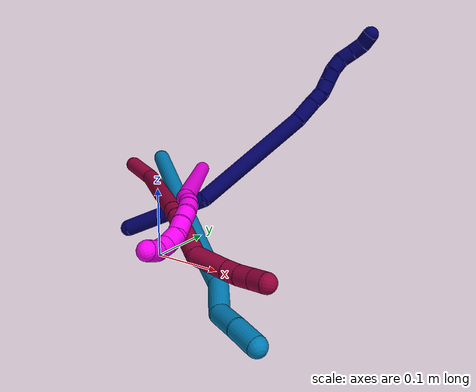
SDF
<sdf version="1.7">
 <world name="default">
  <model name="7">
   <static>0</static>
   <link name="7">
    <collision name="collision-cylinder-e_1_1_4">
     <pose>0.030117 0.025049 0.053015 -0.441399 0.474504 -0.108394</pose>
     <geometry><cylinder><radius>0.0125</radius><length>0.131835</length></cylinder></geometry>
     <surface>
      <friction><ode><mu>1.16</mu><mu2>1.16</mu2><slip1>0</slip1><slip2>0</slip2></ode></friction>
      <contact><ode><kp>1e+06</kp><kd>1</kd><max_vel>0</max_vel><min_depth>0.001</min_depth></ode></contact>
     </surface>
    </collision>
    <visual name="visual-cylinder-e_1_1_4">
     <pose>0.030117 0.025049 0.053015 -0.441399 0.474504 -0.108394</pose>
     <geometry><cylinder><radius>0.0125</radius><length>0.131835</length></cylinder></geometry>
     <material><ambient>0.003922 0 0.403922 1</ambient></material>
    </visual>
    <collision name="collision-cylinder-e_2_4_5">
     <pose>0.068075 0.066408 0.199554 -0.172661 0.082392 -0.007135</pose>
     <geometry><cylinder><radius>0.0125</radius><length>0.190518</length></cylinder></geometry>
     <surface>
      <friction><ode><mu>1.16</mu><mu2>1.16</mu2><slip1>0</slip1><slip2>0</slip2></ode></friction>
      <contact><ode><kp>1e+06</kp><kd>1</kd><max_vel>0</max_vel><min_depth>0.001</min_depth></ode></contact>
     </surface>
    </collision>
    <visual name="visual-cylinder-e_2_4_5">
     <pose>0.068075 0.066408 0.199554 -0.172661 0.082392 -0.007135</pose>
     <geometry><cylinder><radius>0.0125</radius><length>0.190518</length></cylinder></geometry>
     <material><ambient>0.003922 0 0.403922 1</ambient></material>
    </visual>
    <collision name="collision-cylinder-e_3_5_6">
     <pose>0.076234 0.083235 0.311347 -0.02823 0.017481 -0.000247</pose>
     <geometry><cylinder><radius>0.0125</radius><length>0.036557</length></cylinder></geometry>
     <surface>
      <friction><ode><mu>1.16</mu><mu2>1.16</mu2><slip1>0</slip1><slip2>0</slip2></ode></friction>
      <contact><ode><kp>1e+06</kp><kd>1</kd><max_vel>0</max_vel><min_depth>0.001</min_depth></ode></contact>
     </surface>
    </collision>
    <visual name="visual-cylinder-e_3_5_6">
     <pose>0.076234 0.083235 0.311347 -0.02823 0.017481 -0.000247</pose>
     <geometry><cylinder><radius>0.0125</radius><length>0.036557</length></cylinder></geometry>
     <material><ambient>0.003922 0 0.403922 1</ambient></material>
    </visual>
    <collision name="collision-cylinder-e_4_6_7">
     <pose>0.077631 0.084389 0.33956 -0.064083 0.107746 -0.003457</pose>
     <geometry><cylinder><radius>0.0125</radius><length>0.020048</length></cylinder></geometry>
     <surface>
      <friction><ode><mu>1.16</mu><mu2>1.16</mu2><slip1>0</slip1><slip2>0</slip2></ode></friction>
      <contact><ode><kp>1e+06</kp><kd>1</kd><max_vel>0</max_vel><min_depth>0.001</min_depth></ode></contact>
     </surface>
    </collision>
    <visual name="visual-cylinder-e_4_6_7">
     <pose>0.077631 0.084389 0.33956 -0.064083 0.107746 -0.003457</pose>
     <geometry><cylinder><radius>0.0125</radius><length>0.020048</length></cylinder></geometry>
     <material><ambient>0.003922 0 0.403922 1</ambient></material>
    </visual>
    <collision name="collision-cylinder-e_5_7_8">
     <pose>0.078703 0.082758 0.359367 0.226108 -0.000594 -6.7e-05</pose>
     <geometry><cylinder><radius>0.0125</radius><length>0.020238</length></cylinder></geometry>
     <surface>
      <friction><ode><mu>1.16</mu><mu2>1.16</mu2><slip1>0</slip1><slip2>0</slip2></ode></friction>
      <contact><ode><kp>1e+06</kp><kd>1</kd><max_vel>0</max_vel><min_depth>0.001</min_depth></ode></contact>
     </surface>
    </collision>
    <visual name="visual-cylinder-e_5_7_8">
     <pose>0.078703 0.082758 0.359367 0.226108 -0.000594 -6.7e-05</pose>
     <geometry><cylinder><radius>0.0125</radius><length>0.020238</length></cylinder></geometry>
     <material><ambient>0.003922 0 0.403922 1</ambient></material>
    </visual>
    <collision name="collision-cylinder-e_6_8_9">
     <pose>0.080294 0.0776 0.378692 0.296386 0.16003 0.02394</pose>
     <geometry><cylinder><radius>0.0125</radius><length>0.020045</length></cylinder></geometry>
     <surface>
      <friction><ode><mu>1.16</mu><mu2>1.16</mu2><slip1>0</slip1><slip2>0</slip2></ode></friction>
      <contact><ode><kp>1e+06</kp><kd>1</kd><max_vel>0</max_vel><min_depth>0.001</min_depth></ode></contact>
     </surface>
    </collision>
    <visual name="visual-cylinder-e_6_8_9">
     <pose>0.080294 0.0776 0.378692 0.296386 0.16003 0.02394</pose>
     <geometry><cylinder><radius>0.0125</radius><length>0.020045</length></cylinder></geometry>
     <material><ambient>0.003922 0 0.403922 1</ambient></material>
    </visual>
    <collision name="collision-cylinder-e_7_9_10">
     <pose>0.083522 0.07408 0.398245 0.062417 0.159923 0.005003</pose>
     <geometry><cylinder><radius>0.0125</radius><length>0.02048</length></cylinder></geometry>
     <surface>
      <friction><ode><mu>1.16</mu><mu2>1.16</mu2><slip1>0</slip1><slip2>0</slip2></ode></friction>
      <contact><ode><kp>1e+06</kp><kd>1</kd><max_vel>0</max_vel><min_depth>0.001</min_depth></ode></contact>
     </surface>
    </collision>
    <visual name="visual-cylinder-e_7_9_10">
     <pose>0.083522 0.07408 0.398245 0.062417 0.159923 0.005003</pose>
     <geometry><cylinder><radius>0.0125</radius><length>0.02048</length></cylinder></geometry>
     <material><ambient>0.003922 0 0.403922 1</ambient></material>
    </visual>
    <collision name="collision-cylinder-e_8_10_11">
     <pose>0.08872 0.075709 0.417487 -0.242056 0.361795 -0.044481</pose>
     <geometry><cylinder><radius>0.0125</radius><length>0.02016</length></cylinder></geometry>
     <surface>
      <friction><ode><mu>1.16</mu><mu2>1.16</mu2><slip1>0</slip1><slip2>0</slip2></ode></friction>
      <contact><ode><kp>1e+06</kp><kd>1</kd><max_vel>0</max_vel><min_depth>0.001</min_depth></ode></contact>
     </surface>
    </collision>
    <visual name="visual-cylinder-e_8_10_11">
     <pose>0.08872 0.075709 0.417487 -0.242056 0.361795 -0.044481</pose>
     <geometry><cylinder><radius>0.0125</radius><length>0.02016</length></cylinder></geometry>
     <material><ambient>0.003922 0 0.403922 1</ambient></material>
    </visual>
    <collision name="collision-cylinder-e_9_11_12">
     <pose>0.097568 0.079335 0.435041 -0.161292 0.555173 -0.046051</pose>
     <geometry><cylinder><radius>0.0125</radius><length>0.020031</length></cylinder></geometry>
     <surface>
      <friction><ode><mu>1.16</mu><mu2>1.16</mu2><slip1>0</slip1><slip2>0</slip2></ode></friction>
      <contact><ode><kp>1e+06</kp><kd>1</kd><max_vel>0</max_vel><min_depth>0.001</min_depth></ode></contact>
     </surface>
    </collision>
    <visual name="visual-cylinder-e_9_11_12">
     <pose>0.097568 0.079335 0.435041 -0.161292 0.555173 -0.046051</pose>
     <geometry><cylinder><radius>0.0125</radius><length>0.020031</length></cylinder></geometry>
     <material><ambient>0.003922 0 0.403922 1</ambient></material>
    </visual>
    <collision name="collision-cylinder-e_10_12_2">
     <pose>0.10931 0.078579 0.45083 0.279766 0.699091 0.102559</pose>
     <geometry><cylinder><radius>0.0125</radius><length>0.020088</length></cylinder></geometry>
     <surface>
      <friction><ode><mu>1.16</mu><mu2>1.16</mu2><slip1>0</slip1><slip2>0</slip2></ode></friction>
      <contact><ode><kp>1e+06</kp><kd>1</kd><max_vel>0</max_vel><min_depth>0.001</min_depth></ode></contact>
     </surface>
    </collision>
    <visual name="visual-cylinder-e_10_12_2">
     <pose>0.10931 0.078579 0.45083 0.279766 0.699091 0.102559</pose>
     <geometry><cylinder><radius>0.0125</radius><length>0.020088</length></cylinder></geometry>
     <material><ambient>0.003922 0 0.403922 1</ambient></material>
    </visual>
    <collision name="collision-sphere-2">
     <pose>0.115774 0.076457 0.458219 0 -0 0</pose>
     <geometry><sphere><radius>0.0125</radius></sphere></geometry>
     <surface>
      <friction><ode><mu>1.16</mu><mu2>1.16</mu2><slip1>0</slip1><slip2>0</slip2></ode></friction>
      <contact><ode><kp>1e+06</kp><kd>1</kd><max_vel>0</max_vel><min_depth>0.001</min_depth></ode></contact>
     </surface>
    </collision>
    <visual name="visual-sphere-2">
     <pose>0.115774 0.076457 0.458219 0 -0 0</pose>
     <geometry><sphere><radius>0.0125</radius></sphere></geometry>
     <material><ambient>0.003922 0 0.403922 1</ambient></material>
    </visual>
    <collision name="collision-sphere-12">
     <pose>0.102847 0.080702 0.443442 0 -0 0</pose>
     <geometry><sphere><radius>0.0125</radius></sphere></geometry>
     <surface>
      <friction><ode><mu>1.16</mu><mu2>1.16</mu2><slip1>0</slip1><slip2>0</slip2></ode></friction>
      <contact><ode><kp>1e+06</kp><kd>1</kd><max_vel>0</max_vel><min_depth>0.001</min_depth></ode></contact>
     </surface>
    </collision>
    <visual name="visual-sphere-12">
     <pose>0.102847 0.080702 0.443442 0 -0 0</pose>
     <geometry><sphere><radius>0.0125</radius></sphere></geometry>
     <material><ambient>0.003922 0 0.403922 1</ambient></material>
    </visual>
    <collision name="collision-sphere-11">
     <pose>0.092288 0.077969 0.42664 0 -0 0</pose>
     <geometry><sphere><radius>0.0125</radius></sphere></geometry>
     <surface>
      <friction><ode><mu>1.16</mu><mu2>1.16</mu2><slip1>0</slip1><slip2>0</slip2></ode></friction>
      <contact><ode><kp>1e+06</kp><kd>1</kd><max_vel>0</max_vel><min_depth>0.001</min_depth></ode></contact>
     </surface>
    </collision>
    <visual name="visual-sphere-11">
     <pose>0.092288 0.077969 0.42664 0 -0 0</pose>
     <geometry><sphere><radius>0.0125</radius></sphere></geometry>
     <material><ambient>0.003922 0 0.403922 1</ambient></material>
    </visual>
    <collision name="collision-sphere-10">
     <pose>0.085153 0.073449 0.408334 0 -0 0</pose>
     <geometry><sphere><radius>0.0125</radius></sphere></geometry>
     <surface>
      <friction><ode><mu>1.16</mu><mu2>1.16</mu2><slip1>0</slip1><slip2>0</slip2></ode></friction>
      <contact><ode><kp>1e+06</kp><kd>1</kd><max_vel>0</max_vel><min_depth>0.001</min_depth></ode></contact>
     </surface>
    </collision>
    <visual name="visual-sphere-10">
     <pose>0.085153 0.073449 0.408334 0 -0 0</pose>
     <geometry><sphere><radius>0.0125</radius></sphere></geometry>
     <material><ambient>0.003922 0 0.403922 1</ambient></material>
    </visual>
    <collision name="collision-sphere-9">
     <pose>0.081891 0.07471 0.388155 0 -0 0</pose>
     <geometry><sphere><radius>0.0125</radius></sphere></geometry>
     <surface>
      <friction><ode><mu>1.16</mu><mu2>1.16</mu2><slip1>0</slip1><slip2>0</slip2></ode></friction>
      <contact><ode><kp>1e+06</kp><kd>1</kd><max_vel>0</max_vel><min_depth>0.001</min_depth></ode></contact>
     </surface>
    </collision>
    <visual name="visual-sphere-9">
     <pose>0.081891 0.07471 0.388155 0 -0 0</pose>
     <geometry><sphere><radius>0.0125</radius></sphere></geometry>
     <material><ambient>0.003922 0 0.403922 1</ambient></material>
    </visual>
    <collision name="collision-sphere-4">
     <pose>0.060235 0.050098 0.10603 0 -0 0</pose>
     <geometry><sphere><radius>0.0125</radius></sphere></geometry>
     <surface>
      <friction><ode><mu>1.16</mu><mu2>1.16</mu2><slip1>0</slip1><slip2>0</slip2></ode></friction>
      <contact><ode><kp>1e+06</kp><kd>1</kd><max_vel>0</max_vel><min_depth>0.001</min_depth></ode></contact>
     </surface>
    </collision>
    <visual name="visual-sphere-4">
     <pose>0.060235 0.050098 0.10603 0 -0 0</pose>
     <geometry><sphere><radius>0.0125</radius></sphere></geometry>
     <material><ambient>0.003922 0 0.403922 1</ambient></material>
    </visual>
    <collision name="collision-sphere-1">
     <geometry><sphere><radius>0.0125</radius></sphere></geometry>
     <surface>
      <friction><ode><mu>1.16</mu><mu2>1.16</mu2><slip1>0</slip1><slip2>0</slip2></ode></friction>
      <contact><ode><kp>1e+06</kp><kd>1</kd><max_vel>0</max_vel><min_depth>0.001</min_depth></ode></contact>
     </surface>
    </collision>
    <visual name="visual-sphere-1">
     <geometry><sphere><radius>0.0125</radius></sphere></geometry>
     <material><ambient>0.003922 0 0.403922 1</ambient></material>
    </visual>
    <collision name="collision-sphere-8">
     <pose>0.078697 0.08049 0.369229 0 -0 0</pose>
     <geometry><sphere><radius>0.0125</radius></sphere></geometry>
     <surface>
      <friction><ode><mu>1.16</mu><mu2>1.16</mu2><slip1>0</slip1><slip2>0</slip2></ode></friction>
      <contact><ode><kp>1e+06</kp><kd>1</kd><max_vel>0</max_vel><min_depth>0.001</min_depth></ode></contact>
     </surface>
    </collision>
    <visual name="visual-sphere-8">
     <pose>0.078697 0.08049 0.369229 0 -0 0</pose>
     <geometry><sphere><radius>0.0125</radius></sphere></geometry>
     <material><ambient>0.003922 0 0.403922 1</ambient></material>
    </visual>
    <collision name="collision-sphere-5">
     <pose>0.075914 0.082719 0.293078 0 -0 0</pose>
     <geometry><sphere><radius>0.0125</radius></sphere></geometry>
     <surface>
      <friction><ode><mu>1.16</mu><mu2>1.16</mu2><slip1>0</slip1><slip2>0</slip2></ode></friction>
      <contact><ode><kp>1e+06</kp><kd>1</kd><max_vel>0</max_vel><min_depth>0.001</min_depth></ode></contact>
     </surface>
    </collision>
    <visual name="visual-sphere-5">
     <pose>0.075914 0.082719 0.293078 0 -0 0</pose>
     <geometry><sphere><radius>0.0125</radius></sphere></geometry>
     <material><ambient>0.003922 0 0.403922 1</ambient></material>
    </visual>
    <collision name="collision-sphere-6">
     <pose>0.076553 0.083751 0.329615 0 -0 0</pose>
     <geometry><sphere><radius>0.0125</radius></sphere></geometry>
     <surface>
      <friction><ode><mu>1.16</mu><mu2>1.16</mu2><slip1>0</slip1><slip2>0</slip2></ode></friction>
      <contact><ode><kp>1e+06</kp><kd>1</kd><max_vel>0</max_vel><min_depth>0.001</min_depth></ode></contact>
     </surface>
    </collision>
    <visual name="visual-sphere-6">
     <pose>0.076553 0.083751 0.329615 0 -0 0</pose>
     <geometry><sphere><radius>0.0125</radius></sphere></geometry>
     <material><ambient>0.003922 0 0.403922 1</ambient></material>
    </visual>
    <collision name="collision-sphere-7">
     <pose>0.078709 0.085027 0.349506 0 -0 0</pose>
     <geometry><sphere><radius>0.0125</radius></sphere></geometry>
     <surface>
      <friction><ode><mu>1.16</mu><mu2>1.16</mu2><slip1>0</slip1><slip2>0</slip2></ode></friction>
      <contact><ode><kp>1e+06</kp><kd>1</kd><max_vel>0</max_vel><min_depth>0.001</min_depth></ode></contact>
     </surface>
    </collision>
    <visual name="visual-sphere-7">
     <pose>0.078709 0.085027 0.349506 0 -0 0</pose>
     <geometry><sphere><radius>0.0125</radius></sphere></geometry>
     <material><ambient>0.003922 0 0.403922 1</ambient></material>
    </visual>
    <inertial>
     <pose>0.06427 0.060261 0.224809 0 -0 0</pose>
     <mass>0.5</mass>
     <inertia>
      <ixx>0.000756</ixx>
      <ixy>0</ixy>
      <ixz>0</ixz>
      <iyy>0.000754</iyy>
      <iyz>0</iyz>
      <izz>-0.000279</izz>
     </inertia>
    </inertial>
   </link>
   <pose>-0.094007 0.03651 0.011493 -0.767547 -0.209935 -0.679798</pose>
  </model>
  <model name="8">
   <static>0</static>
   <link name="8">
    <collision name="collision-cylinder-e_1_1_4">
     <pose>0.022842 -0.021502 0.009903 1.13917 0.767538 0.506074</pose>
     <geometry><cylinder><radius>0.0125</radius><length>0.065792</length></cylinder></geometry>
     <surface>
      <friction><ode><mu>1.16</mu><mu2>1.16</mu2><slip1>0</slip1><slip2>0</slip2></ode></friction>
      <contact><ode><kp>1e+06</kp><kd>1</kd><max_vel>0</max_vel><min_depth>0.001</min_depth></ode></contact>
     </surface>
    </collision>
    <visual name="visual-cylinder-e_1_1_4">
     <pose>0.022842 -0.021502 0.009903 1.13917 0.767538 0.506074</pose>
     <geometry><cylinder><radius>0.0125</radius><length>0.065792</length></cylinder></geometry>
     <material><ambient>0.584314 0 0.227451 1</ambient></material>
    </visual>
    <collision name="collision-cylinder-e_2_4_5">
     <pose>0.138007 -0.081664 0.044625 1.00011 1.10906 0.652609</pose>
     <geometry><cylinder><radius>0.0125</radius><length>0.206244</length></cylinder></geometry>
     <surface>
      <friction><ode><mu>1.16</mu><mu2>1.16</mu2><slip1>0</slip1><slip2>0</slip2></ode></friction>
      <contact><ode><kp>1e+06</kp><kd>1</kd><max_vel>0</max_vel><min_depth>0.001</min_depth></ode></contact>
     </surface>
    </collision>
    <visual name="visual-cylinder-e_2_4_5">
     <pose>0.138007 -0.081664 0.044625 1.00011 1.10906 0.652609</pose>
     <geometry><cylinder><radius>0.0125</radius><length>0.206244</length></cylinder></geometry>
     <material><ambient>0.584314 0 0.227451 1</ambient></material>
    </visual>
    <collision name="collision-cylinder-e_3_5_6">
     <pose>0.239142 -0.124812 0.073006 0.899585 0.994209 0.512372</pose>
     <geometry><cylinder><radius>0.0125</radius><length>0.021024</length></cylinder></geometry>
     <surface>
      <friction><ode><mu>1.16</mu><mu2>1.16</mu2><slip1>0</slip1><slip2>0</slip2></ode></friction>
      <contact><ode><kp>1e+06</kp><kd>1</kd><max_vel>0</max_vel><min_depth>0.001</min_depth></ode></contact>
     </surface>
    </collision>
    <visual name="visual-cylinder-e_3_5_6">
     <pose>0.239142 -0.124812 0.073006 0.899585 0.994209 0.512372</pose>
     <geometry><cylinder><radius>0.0125</radius><length>0.021024</length></cylinder></geometry>
     <material><ambient>0.584314 0 0.227451 1</ambient></material>
    </visual>
    <collision name="collision-cylinder-e_4_6_7">
     <pose>0.281867 -0.15048 0.098225 0.774335 0.841744 0.361057</pose>
     <geometry><cylinder><radius>0.0125</radius><length>0.09094</length></cylinder></geometry>
     <surface>
      <friction><ode><mu>1.16</mu><mu2>1.16</mu2><slip1>0</slip1><slip2>0</slip2></ode></friction>
      <contact><ode><kp>1e+06</kp><kd>1</kd><max_vel>0</max_vel><min_depth>0.001</min_depth></ode></contact>
     </surface>
    </collision>
    <visual name="visual-cylinder-e_4_6_7">
     <pose>0.281867 -0.15048 0.098225 0.774335 0.841744 0.361057</pose>
     <geometry><cylinder><radius>0.0125</radius><length>0.09094</length></cylinder></geometry>
     <material><ambient>0.584314 0 0.227451 1</ambient></material>
    </visual>
    <collision name="collision-cylinder-e_5_7_8">
     <pose>0.330506 -0.192567 0.124356 1.35983 0.603177 0.492805</pose>
     <geometry><cylinder><radius>0.0125</radius><length>0.051925</length></cylinder></geometry>
     <surface>
      <friction><ode><mu>1.16</mu><mu2>1.16</mu2><slip1>0</slip1><slip2>0</slip2></ode></friction>
      <contact><ode><kp>1e+06</kp><kd>1</kd><max_vel>0</max_vel><min_depth>0.001</min_depth></ode></contact>
     </surface>
    </collision>
    <visual name="visual-cylinder-e_5_7_8">
     <pose>0.330506 -0.192567 0.124356 1.35983 0.603177 0.492805</pose>
     <geometry><cylinder><radius>0.0125</radius><length>0.051925</length></cylinder></geometry>
     <material><ambient>0.584314 0 0.227451 1</ambient></material>
    </visual>
    <collision name="collision-cylinder-e_6_8_9">
     <pose>0.35168 -0.221573 0.130012 1.42634 0.667144 0.582474</pose>
     <geometry><cylinder><radius>0.0125</radius><length>0.020837</length></cylinder></geometry>
     <surface>
      <friction><ode><mu>1.16</mu><mu2>1.16</mu2><slip1>0</slip1><slip2>0</slip2></ode></friction>
      <contact><ode><kp>1e+06</kp><kd>1</kd><max_vel>0</max_vel><min_depth>0.001</min_depth></ode></contact>
     </surface>
    </collision>
    <visual name="visual-cylinder-e_6_8_9">
     <pose>0.35168 -0.221573 0.130012 1.42634 0.667144 0.582474</pose>
     <geometry><cylinder><radius>0.0125</radius><length>0.020837</length></cylinder></geometry>
     <material><ambient>0.584314 0 0.227451 1</ambient></material>
    </visual>
    <collision name="collision-cylinder-e_7_9_10">
     <pose>0.364939 -0.238272 0.131447 1.5409 0.669794 0.651449</pose>
     <geometry><cylinder><radius>0.0125</radius><length>0.021948</length></cylinder></geometry>
     <surface>
      <friction><ode><mu>1.16</mu><mu2>1.16</mu2><slip1>0</slip1><slip2>0</slip2></ode></friction>
      <contact><ode><kp>1e+06</kp><kd>1</kd><max_vel>0</max_vel><min_depth>0.001</min_depth></ode></contact>
     </surface>
    </collision>
    <visual name="visual-cylinder-e_7_9_10">
     <pose>0.364939 -0.238272 0.131447 1.5409 0.669794 0.651449</pose>
     <geometry><cylinder><radius>0.0125</radius><length>0.021948</length></cylinder></geometry>
     <material><ambient>0.584314 0 0.227451 1</ambient></material>
    </visual>
    <collision name="collision-cylinder-e_8_10_2">
     <pose>0.379196 -0.254476 0.131977 1.53495 0.774386 0.749632</pose>
     <geometry><cylinder><radius>0.0125</radius><length>0.021291</length></cylinder></geometry>
     <surface>
      <friction><ode><mu>1.16</mu><mu2>1.16</mu2><slip1>0</slip1><slip2>0</slip2></ode></friction>
      <contact><ode><kp>1e+06</kp><kd>1</kd><max_vel>0</max_vel><min_depth>0.001</min_depth></ode></contact>
     </surface>
    </collision>
    <visual name="visual-cylinder-e_8_10_2">
     <pose>0.379196 -0.254476 0.131977 1.53495 0.774386 0.749632</pose>
     <geometry><cylinder><radius>0.0125</radius><length>0.021291</length></cylinder></geometry>
     <material><ambient>0.584314 0 0.227451 1</ambient></material>
    </visual>
    <collision name="collision-sphere-2">
     <pose>0.38664 -0.262081 0.13225 0 -0 0</pose>
     <geometry><sphere><radius>0.0125</radius></sphere></geometry>
     <surface>
      <friction><ode><mu>1.16</mu><mu2>1.16</mu2><slip1>0</slip1><slip2>0</slip2></ode></friction>
      <contact><ode><kp>1e+06</kp><kd>1</kd><max_vel>0</max_vel><min_depth>0.001</min_depth></ode></contact>
     </surface>
    </collision>
    <visual name="visual-sphere-2">
     <pose>0.38664 -0.262081 0.13225 0 -0 0</pose>
     <geometry><sphere><radius>0.0125</radius></sphere></geometry>
     <material><ambient>0.584314 0 0.227451 1</ambient></material>
    </visual>
    <collision name="collision-sphere-10">
     <pose>0.371752 -0.246871 0.131704 0 -0 0</pose>
     <geometry><sphere><radius>0.0125</radius></sphere></geometry>
     <surface>
      <friction><ode><mu>1.16</mu><mu2>1.16</mu2><slip1>0</slip1><slip2>0</slip2></ode></friction>
      <contact><ode><kp>1e+06</kp><kd>1</kd><max_vel>0</max_vel><min_depth>0.001</min_depth></ode></contact>
     </surface>
    </collision>
    <visual name="visual-sphere-10">
     <pose>0.371752 -0.246871 0.131704 0 -0 0</pose>
     <geometry><sphere><radius>0.0125</radius></sphere></geometry>
     <material><ambient>0.584314 0 0.227451 1</ambient></material>
    </visual>
    <collision name="collision-sphere-9">
     <pose>0.358126 -0.229673 0.13119 0 -0 0</pose>
     <geometry><sphere><radius>0.0125</radius></sphere></geometry>
     <surface>
      <friction><ode><mu>1.16</mu><mu2>1.16</mu2><slip1>0</slip1><slip2>0</slip2></ode></friction>
      <contact><ode><kp>1e+06</kp><kd>1</kd><max_vel>0</max_vel><min_depth>0.001</min_depth></ode></contact>
     </surface>
    </collision>
    <visual name="visual-sphere-9">
     <pose>0.358126 -0.229673 0.13119 0 -0 0</pose>
     <geometry><sphere><radius>0.0125</radius></sphere></geometry>
     <material><ambient>0.584314 0 0.227451 1</ambient></material>
    </visual>
    <collision name="collision-sphere-4">
     <pose>0.045684 -0.043003 0.019807 0 -0 0</pose>
     <geometry><sphere><radius>0.0125</radius></sphere></geometry>
     <surface>
      <friction><ode><mu>1.16</mu><mu2>1.16</mu2><slip1>0</slip1><slip2>0</slip2></ode></friction>
      <contact><ode><kp>1e+06</kp><kd>1</kd><max_vel>0</max_vel><min_depth>0.001</min_depth></ode></contact>
     </surface>
    </collision>
    <visual name="visual-sphere-4">
     <pose>0.045684 -0.043003 0.019807 0 -0 0</pose>
     <geometry><sphere><radius>0.0125</radius></sphere></geometry>
     <material><ambient>0.584314 0 0.227451 1</ambient></material>
    </visual>
    <collision name="collision-sphere-1">
     <geometry><sphere><radius>0.0125</radius></sphere></geometry>
     <surface>
      <friction><ode><mu>1.16</mu><mu2>1.16</mu2><slip1>0</slip1><slip2>0</slip2></ode></friction>
      <contact><ode><kp>1e+06</kp><kd>1</kd><max_vel>0</max_vel><min_depth>0.001</min_depth></ode></contact>
     </surface>
    </collision>
    <visual name="visual-sphere-1">
     <geometry><sphere><radius>0.0125</radius></sphere></geometry>
     <material><ambient>0.584314 0 0.227451 1</ambient></material>
    </visual>
    <collision name="collision-sphere-8">
     <pose>0.345234 -0.213474 0.128834 0 -0 0</pose>
     <geometry><sphere><radius>0.0125</radius></sphere></geometry>
     <surface>
      <friction><ode><mu>1.16</mu><mu2>1.16</mu2><slip1>0</slip1><slip2>0</slip2></ode></friction>
      <contact><ode><kp>1e+06</kp><kd>1</kd><max_vel>0</max_vel><min_depth>0.001</min_depth></ode></contact>
     </surface>
    </collision>
    <visual name="visual-sphere-8">
     <pose>0.345234 -0.213474 0.128834 0 -0 0</pose>
     <geometry><sphere><radius>0.0125</radius></sphere></geometry>
     <material><ambient>0.584314 0 0.227451 1</ambient></material>
    </visual>
    <collision name="collision-sphere-5">
     <pose>0.23033 -0.120324 0.069442 0 -0 0</pose>
     <geometry><sphere><radius>0.0125</radius></sphere></geometry>
     <surface>
      <friction><ode><mu>1.16</mu><mu2>1.16</mu2><slip1>0</slip1><slip2>0</slip2></ode></friction>
      <contact><ode><kp>1e+06</kp><kd>1</kd><max_vel>0</max_vel><min_depth>0.001</min_depth></ode></contact>
     </surface>
    </collision>
    <visual name="visual-sphere-5">
     <pose>0.23033 -0.120324 0.069442 0 -0 0</pose>
     <geometry><sphere><radius>0.0125</radius></sphere></geometry>
     <material><ambient>0.584314 0 0.227451 1</ambient></material>
    </visual>
    <collision name="collision-sphere-6">
     <pose>0.247955 -0.129299 0.076571 0 -0 0</pose>
     <geometry><sphere><radius>0.0125</radius></sphere></geometry>
     <surface>
      <friction><ode><mu>1.16</mu><mu2>1.16</mu2><slip1>0</slip1><slip2>0</slip2></ode></friction>
      <contact><ode><kp>1e+06</kp><kd>1</kd><max_vel>0</max_vel><min_depth>0.001</min_depth></ode></contact>
     </surface>
    </collision>
    <visual name="visual-sphere-6">
     <pose>0.247955 -0.129299 0.076571 0 -0 0</pose>
     <geometry><sphere><radius>0.0125</radius></sphere></geometry>
     <material><ambient>0.584314 0 0.227451 1</ambient></material>
    </visual>
    <collision name="collision-sphere-7">
     <pose>0.315779 -0.17166 0.119879 0 -0 0</pose>
     <geometry><sphere><radius>0.0125</radius></sphere></geometry>
     <surface>
      <friction><ode><mu>1.16</mu><mu2>1.16</mu2><slip1>0</slip1><slip2>0</slip2></ode></friction>
      <contact><ode><kp>1e+06</kp><kd>1</kd><max_vel>0</max_vel><min_depth>0.001</min_depth></ode></contact>
     </surface>
    </collision>
    <visual name="visual-sphere-7">
     <pose>0.315779 -0.17166 0.119879 0 -0 0</pose>
     <geometry><sphere><radius>0.0125</radius></sphere></geometry>
     <material><ambient>0.584314 0 0.227451 1</ambient></material>
    </visual>
    <inertial>
     <pose>0.202398 -0.119659 0.070367 0 -0 0</pose>
     <mass>0.5</mass>
     <inertia>
      <ixx>0.000596</ixx>
      <ixy>0</ixy>
      <ixz>0</ixz>
      <iyy>0.000952</iyy>
      <iyz>0</iyz>
      <izz>-0.000391</izz>
     </inertia>
    </inertial>
   </link>
   <pose>-0.180284 0.145221 0.07853 2.99794 -0.359354 -1.04577</pose>
  </model>
  <model name="9">
   <static>0</static>
   <link name="9">
    <collision name="collision-cylinder-e_1_1_4">
     <pose>-0.002202 -0.043287 0.15798 0.267439 -0.01344 -0.001808</pose>
     <geometry><cylinder><radius>0.0125</radius><length>0.327635</length></cylinder></geometry>
     <surface>
      <friction><ode><mu>1.16</mu><mu2>1.16</mu2><slip1>0</slip1><slip2>0</slip2></ode></friction>
      <contact><ode><kp>1e+06</kp><kd>1</kd><max_vel>0</max_vel><min_depth>0.001</min_depth></ode></contact>
     </surface>
    </collision>
    <visual name="visual-cylinder-e_1_1_4">
     <pose>-0.002202 -0.043287 0.15798 0.267439 -0.01344 -0.001808</pose>
     <geometry><cylinder><radius>0.0125</radius><length>0.327635</length></cylinder></geometry>
     <material><ambient>0 0.490196 0.709804 1</ambient></material>
    </visual>
    <collision name="collision-cylinder-e_2_4_5">
     <pose>-0.005743 -0.092599 0.338137 0.265281 -0.058224 -0.007771</pose>
     <geometry><cylinder><radius>0.0125</radius><length>0.046042</length></cylinder></geometry>
     <surface>
      <friction><ode><mu>1.16</mu><mu2>1.16</mu2><slip1>0</slip1><slip2>0</slip2></ode></friction>
      <contact><ode><kp>1e+06</kp><kd>1</kd><max_vel>0</max_vel><min_depth>0.001</min_depth></ode></contact>
     </surface>
    </collision>
    <visual name="visual-cylinder-e_2_4_5">
     <pose>-0.005743 -0.092599 0.338137 0.265281 -0.058224 -0.007771</pose>
     <geometry><cylinder><radius>0.0125</radius><length>0.046042</length></cylinder></geometry>
     <material><ambient>0 0.490196 0.709804 1</ambient></material>
    </visual>
    <collision name="collision-cylinder-e_3_5_6">
     <pose>-0.001488 -0.1057 0.384838 0.280882 0.215794 0.030624</pose>
     <geometry><cylinder><radius>0.0125</radius><length>0.052256</length></cylinder></geometry>
     <surface>
      <friction><ode><mu>1.16</mu><mu2>1.16</mu2><slip1>0</slip1><slip2>0</slip2></ode></friction>
      <contact><ode><kp>1e+06</kp><kd>1</kd><max_vel>0</max_vel><min_depth>0.001</min_depth></ode></contact>
     </surface>
    </collision>
    <visual name="visual-cylinder-e_3_5_6">
     <pose>-0.001488 -0.1057 0.384838 0.280882 0.215794 0.030624</pose>
     <geometry><cylinder><radius>0.0125</radius><length>0.052256</length></cylinder></geometry>
     <material><ambient>0 0.490196 0.709804 1</ambient></material>
    </visual>
    <collision name="collision-cylinder-e_4_6_7">
     <pose>-0.00145 -0.119627 0.426203 0.386402 -0.296557 -0.058431</pose>
     <geometry><cylinder><radius>0.0125</radius><length>0.038029</length></cylinder></geometry>
     <surface>
      <friction><ode><mu>1.16</mu><mu2>1.16</mu2><slip1>0</slip1><slip2>0</slip2></ode></friction>
      <contact><ode><kp>1e+06</kp><kd>1</kd><max_vel>0</max_vel><min_depth>0.001</min_depth></ode></contact>
     </surface>
    </collision>
    <visual name="visual-cylinder-e_4_6_7">
     <pose>-0.00145 -0.119627 0.426203 0.386402 -0.296557 -0.058431</pose>
     <geometry><cylinder><radius>0.0125</radius><length>0.038029</length></cylinder></geometry>
     <material><ambient>0 0.490196 0.709804 1</ambient></material>
    </visual>
    <collision name="collision-cylinder-e_5_7_2">
     <pose>-0.012881 -0.130325 0.459642 0.22765 -0.332099 -0.038313</pose>
     <geometry><cylinder><radius>0.0125</radius><length>0.036037</length></cylinder></geometry>
     <surface>
      <friction><ode><mu>1.16</mu><mu2>1.16</mu2><slip1>0</slip1><slip2>0</slip2></ode></friction>
      <contact><ode><kp>1e+06</kp><kd>1</kd><max_vel>0</max_vel><min_depth>0.001</min_depth></ode></contact>
     </surface>
    </collision>
    <visual name="visual-cylinder-e_5_7_2">
     <pose>-0.012881 -0.130325 0.459642 0.22765 -0.332099 -0.038313</pose>
     <geometry><cylinder><radius>0.0125</radius><length>0.036037</length></cylinder></geometry>
     <material><ambient>0 0.490196 0.709804 1</ambient></material>
    </visual>
    <collision name="collision-sphere-2">
     <pose>-0.018756 -0.134169 0.476236 0 -0 0</pose>
     <geometry><sphere><radius>0.0125</radius></sphere></geometry>
     <surface>
      <friction><ode><mu>1.16</mu><mu2>1.16</mu2><slip1>0</slip1><slip2>0</slip2></ode></friction>
      <contact><ode><kp>1e+06</kp><kd>1</kd><max_vel>0</max_vel><min_depth>0.001</min_depth></ode></contact>
     </surface>
    </collision>
    <visual name="visual-sphere-2">
     <pose>-0.018756 -0.134169 0.476236 0 -0 0</pose>
     <geometry><sphere><radius>0.0125</radius></sphere></geometry>
     <material><ambient>0 0.490196 0.709804 1</ambient></material>
    </visual>
    <collision name="collision-sphere-7">
     <pose>-0.007007 -0.12648 0.443047 0 -0 0</pose>
     <geometry><sphere><radius>0.0125</radius></sphere></geometry>
     <surface>
      <friction><ode><mu>1.16</mu><mu2>1.16</mu2><slip1>0</slip1><slip2>0</slip2></ode></friction>
      <contact><ode><kp>1e+06</kp><kd>1</kd><max_vel>0</max_vel><min_depth>0.001</min_depth></ode></contact>
     </surface>
    </collision>
    <visual name="visual-sphere-7">
     <pose>-0.007007 -0.12648 0.443047 0 -0 0</pose>
     <geometry><sphere><radius>0.0125</radius></sphere></geometry>
     <material><ambient>0 0.490196 0.709804 1</ambient></material>
    </visual>
    <collision name="collision-sphere-6">
     <pose>0.004107 -0.112774 0.40936 0 -0 0</pose>
     <geometry><sphere><radius>0.0125</radius></sphere></geometry>
     <surface>
      <friction><ode><mu>1.16</mu><mu2>1.16</mu2><slip1>0</slip1><slip2>0</slip2></ode></friction>
      <contact><ode><kp>1e+06</kp><kd>1</kd><max_vel>0</max_vel><min_depth>0.001</min_depth></ode></contact>
     </surface>
    </collision>
    <visual name="visual-sphere-6">
     <pose>0.004107 -0.112774 0.40936 0 -0 0</pose>
     <geometry><sphere><radius>0.0125</radius></sphere></geometry>
     <material><ambient>0 0.490196 0.709804 1</ambient></material>
    </visual>
    <collision name="collision-sphere-5">
     <pose>-0.007083 -0.098625 0.360316 0 -0 0</pose>
     <geometry><sphere><radius>0.0125</radius></sphere></geometry>
     <surface>
      <friction><ode><mu>1.16</mu><mu2>1.16</mu2><slip1>0</slip1><slip2>0</slip2></ode></friction>
      <contact><ode><kp>1e+06</kp><kd>1</kd><max_vel>0</max_vel><min_depth>0.001</min_depth></ode></contact>
     </surface>
    </collision>
    <visual name="visual-sphere-5">
     <pose>-0.007083 -0.098625 0.360316 0 -0 0</pose>
     <geometry><sphere><radius>0.0125</radius></sphere></geometry>
     <material><ambient>0 0.490196 0.709804 1</ambient></material>
    </visual>
    <collision name="collision-sphere-1">
     <geometry><sphere><radius>0.0125</radius></sphere></geometry>
     <surface>
      <friction><ode><mu>1.16</mu><mu2>1.16</mu2><slip1>0</slip1><slip2>0</slip2></ode></friction>
      <contact><ode><kp>1e+06</kp><kd>1</kd><max_vel>0</max_vel><min_depth>0.001</min_depth></ode></contact>
     </surface>
    </collision>
    <visual name="visual-sphere-1">
     <geometry><sphere><radius>0.0125</radius></sphere></geometry>
     <material><ambient>0 0.490196 0.709804 1</ambient></material>
    </visual>
    <collision name="collision-sphere-4">
     <pose>-0.004403 -0.086574 0.315959 0 -0 0</pose>
     <geometry><sphere><radius>0.0125</radius></sphere></geometry>
     <surface>
      <friction><ode><mu>1.16</mu><mu2>1.16</mu2><slip1>0</slip1><slip2>0</slip2></ode></friction>
      <contact><ode><kp>1e+06</kp><kd>1</kd><max_vel>0</max_vel><min_depth>0.001</min_depth></ode></contact>
     </surface>
    </collision>
    <visual name="visual-sphere-4">
     <pose>-0.004403 -0.086574 0.315959 0 -0 0</pose>
     <geometry><sphere><radius>0.0125</radius></sphere></geometry>
     <material><ambient>0 0.490196 0.709804 1</ambient></material>
    </visual>
    <inertial>
     <pose>-0.003166 -0.06643 0.240422 0 -0 0</pose>
     <mass>0.5</mass>
     <inertia>
      <ixx>0.002971</ixx>
      <ixy>0</ixy>
      <ixz>0</ixz>
      <iyy>0.002857</iyy>
      <iyz>0</iyz>
      <izz>0.000865</izz>
     </inertia>
    </inertial>
   </link>
   <pose>-0.121892 0.152121 0.097469 -2.03569 0.275005 -2.33246</pose>
  </model>
  <model name="10">
   <static>0</static>
   <link name="10">
    <collision name="collision-cylinder-e_1_1_4">
     <pose>-0.015191 -0.136044 0.098139 0.945866 -0.090313 -0.046233</pose>
     <geometry><cylinder><radius>0.0125</radius><length>0.336868</length></cylinder></geometry>
     <surface>
      <friction><ode><mu>1.16</mu><mu2>1.16</mu2><slip1>0</slip1><slip2>0</slip2></ode></friction>
      <contact><ode><kp>1e+06</kp><kd>1</kd><max_vel>0</max_vel><min_depth>0.001</min_depth></ode></contact>
     </surface>
    </collision>
    <visual name="visual-cylinder-e_1_1_4">
     <pose>-0.015191 -0.136044 0.098139 0.945866 -0.090313 -0.046233</pose>
     <geometry><cylinder><radius>0.0125</radius><length>0.336868</length></cylinder></geometry>
     <material><ambient>1 0 0.964706 1</ambient></material>
    </visual>
    <collision name="collision-cylinder-e_2_4_5">
     <pose>-0.03325 -0.28167 0.200256 1.17733 -0.269687 -0.180656</pose>
     <geometry><cylinder><radius>0.0125</radius><length>0.021527</length></cylinder></geometry>
     <surface>
      <friction><ode><mu>1.16</mu><mu2>1.16</mu2><slip1>0</slip1><slip2>0</slip2></ode></friction>
      <contact><ode><kp>1e+06</kp><kd>1</kd><max_vel>0</max_vel><min_depth>0.001</min_depth></ode></contact>
     </surface>
    </collision>
    <visual name="visual-cylinder-e_2_4_5">
     <pose>-0.03325 -0.28167 0.200256 1.17733 -0.269687 -0.180656</pose>
     <geometry><cylinder><radius>0.0125</radius><length>0.021527</length></cylinder></geometry>
     <material><ambient>1 0 0.964706 1</ambient></material>
    </visual>
    <collision name="collision-cylinder-e_3_5_6">
     <pose>-0.038124 -0.299815 0.209891 0.986981 -0.193022 -0.104052</pose>
     <geometry><cylinder><radius>0.0125</radius><length>0.020916</length></cylinder></geometry>
     <surface>
      <friction><ode><mu>1.16</mu><mu2>1.16</mu2><slip1>0</slip1><slip2>0</slip2></ode></friction>
      <contact><ode><kp>1e+06</kp><kd>1</kd><max_vel>0</max_vel><min_depth>0.001</min_depth></ode></contact>
     </surface>
    </collision>
    <visual name="visual-cylinder-e_3_5_6">
     <pose>-0.038124 -0.299815 0.209891 0.986981 -0.193022 -0.104052</pose>
     <geometry><cylinder><radius>0.0125</radius><length>0.020916</length></cylinder></geometry>
     <material><ambient>1 0 0.964706 1</ambient></material>
    </visual>
    <collision name="collision-cylinder-e_4_6_7">
     <pose>-0.043151 -0.315479 0.222207 0.817492 -0.300954 -0.13116</pose>
     <geometry><cylinder><radius>0.0125</radius><length>0.020383</length></cylinder></geometry>
     <surface>
      <friction><ode><mu>1.16</mu><mu2>1.16</mu2><slip1>0</slip1><slip2>0</slip2></ode></friction>
      <contact><ode><kp>1e+06</kp><kd>1</kd><max_vel>0</max_vel><min_depth>0.001</min_depth></ode></contact>
     </surface>
    </collision>
    <visual name="visual-cylinder-e_4_6_7">
     <pose>-0.043151 -0.315479 0.222207 0.817492 -0.300954 -0.13116</pose>
     <geometry><cylinder><radius>0.0125</radius><length>0.020383</length></cylinder></geometry>
     <material><ambient>1 0 0.964706 1</ambient></material>
    </visual>
    <collision name="collision-cylinder-e_5_7_8">
     <pose>-0.050175 -0.327338 0.236757 0.542639 -0.409775 -0.115485</pose>
     <geometry><cylinder><radius>0.0125</radius><length>0.020096</length></cylinder></geometry>
     <surface>
      <friction><ode><mu>1.16</mu><mu2>1.16</mu2><slip1>0</slip1><slip2>0</slip2></ode></friction>
      <contact><ode><kp>1e+06</kp><kd>1</kd><max_vel>0</max_vel><min_depth>0.001</min_depth></ode></contact>
     </surface>
    </collision>
    <visual name="visual-cylinder-e_5_7_8">
     <pose>-0.050175 -0.327338 0.236757 0.542639 -0.409775 -0.115485</pose>
     <geometry><cylinder><radius>0.0125</radius><length>0.020096</length></cylinder></geometry>
     <material><ambient>1 0 0.964706 1</ambient></material>
    </visual>
    <collision name="collision-cylinder-e_6_8_9">
     <pose>-0.059368 -0.335956 0.252364 0.463797 -0.541644 -0.130942</pose>
     <geometry><cylinder><radius>0.0125</radius><length>0.020136</length></cylinder></geometry>
     <surface>
      <friction><ode><mu>1.16</mu><mu2>1.16</mu2><slip1>0</slip1><slip2>0</slip2></ode></friction>
      <contact><ode><kp>1e+06</kp><kd>1</kd><max_vel>0</max_vel><min_depth>0.001</min_depth></ode></contact>
     </surface>
    </collision>
    <visual name="visual-cylinder-e_6_8_9">
     <pose>-0.059368 -0.335956 0.252364 0.463797 -0.541644 -0.130942</pose>
     <geometry><cylinder><radius>0.0125</radius><length>0.020136</length></cylinder></geometry>
     <material><ambient>1 0 0.964706 1</ambient></material>
    </visual>
    <collision name="collision-cylinder-e_7_9_10">
     <pose>-0.067624 -0.340955 0.269531 0.120017 -0.311465 -0.018865</pose>
     <geometry><cylinder><radius>0.0125</radius><length>0.020001</length></cylinder></geometry>
     <surface>
      <friction><ode><mu>1.16</mu><mu2>1.16</mu2><slip1>0</slip1><slip2>0</slip2></ode></friction>
      <contact><ode><kp>1e+06</kp><kd>1</kd><max_vel>0</max_vel><min_depth>0.001</min_depth></ode></contact>
     </surface>
    </collision>
    <visual name="visual-cylinder-e_7_9_10">
     <pose>-0.067624 -0.340955 0.269531 0.120017 -0.311465 -0.018865</pose>
     <geometry><cylinder><radius>0.0125</radius><length>0.020001</length></cylinder></geometry>
     <material><ambient>1 0 0.964706 1</ambient></material>
    </visual>
    <collision name="collision-cylinder-e_8_10_11">
     <pose>-0.07127 -0.346654 0.287892 0.472979 -0.058017 -0.013986</pose>
     <geometry><cylinder><radius>0.0125</radius><length>0.020052</length></cylinder></geometry>
     <surface>
      <friction><ode><mu>1.16</mu><mu2>1.16</mu2><slip1>0</slip1><slip2>0</slip2></ode></friction>
      <contact><ode><kp>1e+06</kp><kd>1</kd><max_vel>0</max_vel><min_depth>0.001</min_depth></ode></contact>
     </surface>
    </collision>
    <visual name="visual-cylinder-e_8_10_11">
     <pose>-0.07127 -0.346654 0.287892 0.472979 -0.058017 -0.013986</pose>
     <geometry><cylinder><radius>0.0125</radius><length>0.020052</length></cylinder></geometry>
     <material><ambient>1 0 0.964706 1</ambient></material>
    </visual>
    <collision name="collision-cylinder-e_9_11_2">
     <pose>-0.068782 -0.356355 0.304825 0.569926 0.311542 0.091942</pose>
     <geometry><cylinder><radius>0.0125</radius><length>0.020022</length></cylinder></geometry>
     <surface>
      <friction><ode><mu>1.16</mu><mu2>1.16</mu2><slip1>0</slip1><slip2>0</slip2></ode></friction>
      <contact><ode><kp>1e+06</kp><kd>1</kd><max_vel>0</max_vel><min_depth>0.001</min_depth></ode></contact>
     </surface>
    </collision>
    <visual name="visual-cylinder-e_9_11_2">
     <pose>-0.068782 -0.356355 0.304825 0.569926 0.311542 0.091942</pose>
     <geometry><cylinder><radius>0.0125</radius><length>0.020022</length></cylinder></geometry>
     <material><ambient>1 0 0.964706 1</ambient></material>
    </visual>
    <collision name="collision-sphere-2">
     <pose>-0.065714 -0.361497 0.312847 0 -0 0</pose>
     <geometry><sphere><radius>0.0125</radius></sphere></geometry>
     <surface>
      <friction><ode><mu>1.16</mu><mu2>1.16</mu2><slip1>0</slip1><slip2>0</slip2></ode></friction>
      <contact><ode><kp>1e+06</kp><kd>1</kd><max_vel>0</max_vel><min_depth>0.001</min_depth></ode></contact>
     </surface>
    </collision>
    <visual name="visual-sphere-2">
     <pose>-0.065714 -0.361497 0.312847 0 -0 0</pose>
     <geometry><sphere><radius>0.0125</radius></sphere></geometry>
     <material><ambient>1 0 0.964706 1</ambient></material>
    </visual>
    <collision name="collision-sphere-11">
     <pose>-0.071851 -0.351214 0.296802 0 -0 0</pose>
     <geometry><sphere><radius>0.0125</radius></sphere></geometry>
     <surface>
      <friction><ode><mu>1.16</mu><mu2>1.16</mu2><slip1>0</slip1><slip2>0</slip2></ode></friction>
      <contact><ode><kp>1e+06</kp><kd>1</kd><max_vel>0</max_vel><min_depth>0.001</min_depth></ode></contact>
     </surface>
    </collision>
    <visual name="visual-sphere-11">
     <pose>-0.071851 -0.351214 0.296802 0 -0 0</pose>
     <geometry><sphere><radius>0.0125</radius></sphere></geometry>
     <material><ambient>1 0 0.964706 1</ambient></material>
    </visual>
    <collision name="collision-sphere-10">
     <pose>-0.070688 -0.342095 0.278981 0 -0 0</pose>
     <geometry><sphere><radius>0.0125</radius></sphere></geometry>
     <surface>
      <friction><ode><mu>1.16</mu><mu2>1.16</mu2><slip1>0</slip1><slip2>0</slip2></ode></friction>
      <contact><ode><kp>1e+06</kp><kd>1</kd><max_vel>0</max_vel><min_depth>0.001</min_depth></ode></contact>
     </surface>
    </collision>
    <visual name="visual-sphere-10">
     <pose>-0.070688 -0.342095 0.278981 0 -0 0</pose>
     <geometry><sphere><radius>0.0125</radius></sphere></geometry>
     <material><ambient>1 0 0.964706 1</ambient></material>
    </visual>
    <collision name="collision-sphere-9">
     <pose>-0.064559 -0.339815 0.26008 0 -0 0</pose>
     <geometry><sphere><radius>0.0125</radius></sphere></geometry>
     <surface>
      <friction><ode><mu>1.16</mu><mu2>1.16</mu2><slip1>0</slip1><slip2>0</slip2></ode></friction>
      <contact><ode><kp>1e+06</kp><kd>1</kd><max_vel>0</max_vel><min_depth>0.001</min_depth></ode></contact>
     </surface>
    </collision>
    <visual name="visual-sphere-9">
     <pose>-0.064559 -0.339815 0.26008 0 -0 0</pose>
     <geometry><sphere><radius>0.0125</radius></sphere></geometry>
     <material><ambient>1 0 0.964706 1</ambient></material>
    </visual>
    <collision name="collision-sphere-4">
     <pose>-0.030382 -0.272088 0.196279 0 -0 0</pose>
     <geometry><sphere><radius>0.0125</radius></sphere></geometry>
     <surface>
      <friction><ode><mu>1.16</mu><mu2>1.16</mu2><slip1>0</slip1><slip2>0</slip2></ode></friction>
      <contact><ode><kp>1e+06</kp><kd>1</kd><max_vel>0</max_vel><min_depth>0.001</min_depth></ode></contact>
     </surface>
    </collision>
    <visual name="visual-sphere-4">
     <pose>-0.030382 -0.272088 0.196279 0 -0 0</pose>
     <geometry><sphere><radius>0.0125</radius></sphere></geometry>
     <material><ambient>1 0 0.964706 1</ambient></material>
    </visual>
    <collision name="collision-sphere-1">
     <geometry><sphere><radius>0.0125</radius></sphere></geometry>
     <surface>
      <friction><ode><mu>1.16</mu><mu2>1.16</mu2><slip1>0</slip1><slip2>0</slip2></ode></friction>
      <contact><ode><kp>1e+06</kp><kd>1</kd><max_vel>0</max_vel><min_depth>0.001</min_depth></ode></contact>
     </surface>
    </collision>
    <visual name="visual-sphere-1">
     <geometry><sphere><radius>0.0125</radius></sphere></geometry>
     <material><ambient>1 0 0.964706 1</ambient></material>
    </visual>
    <collision name="collision-sphere-8">
     <pose>-0.054178 -0.332097 0.244649 0 -0 0</pose>
     <geometry><sphere><radius>0.0125</radius></sphere></geometry>
     <surface>
      <friction><ode><mu>1.16</mu><mu2>1.16</mu2><slip1>0</slip1><slip2>0</slip2></ode></friction>
      <contact><ode><kp>1e+06</kp><kd>1</kd><max_vel>0</max_vel><min_depth>0.001</min_depth></ode></contact>
     </surface>
    </collision>
    <visual name="visual-sphere-8">
     <pose>-0.054178 -0.332097 0.244649 0 -0 0</pose>
     <geometry><sphere><radius>0.0125</radius></sphere></geometry>
     <material><ambient>1 0 0.964706 1</ambient></material>
    </visual>
    <collision name="collision-sphere-5">
     <pose>-0.036118 -0.291252 0.204233 0 -0 0</pose>
     <geometry><sphere><radius>0.0125</radius></sphere></geometry>
     <surface>
      <friction><ode><mu>1.16</mu><mu2>1.16</mu2><slip1>0</slip1><slip2>0</slip2></ode></friction>
      <contact><ode><kp>1e+06</kp><kd>1</kd><max_vel>0</max_vel><min_depth>0.001</min_depth></ode></contact>
     </surface>
    </collision>
    <visual name="visual-sphere-5">
     <pose>-0.036118 -0.291252 0.204233 0 -0 0</pose>
     <geometry><sphere><radius>0.0125</radius></sphere></geometry>
     <material><ambient>1 0 0.964706 1</ambient></material>
    </visual>
    <collision name="collision-sphere-6">
     <pose>-0.04013 -0.308379 0.215549 0 -0 0</pose>
     <geometry><sphere><radius>0.0125</radius></sphere></geometry>
     <surface>
      <friction><ode><mu>1.16</mu><mu2>1.16</mu2><slip1>0</slip1><slip2>0</slip2></ode></friction>
      <contact><ode><kp>1e+06</kp><kd>1</kd><max_vel>0</max_vel><min_depth>0.001</min_depth></ode></contact>
     </surface>
    </collision>
    <visual name="visual-sphere-6">
     <pose>-0.04013 -0.308379 0.215549 0 -0 0</pose>
     <geometry><sphere><radius>0.0125</radius></sphere></geometry>
     <material><ambient>1 0 0.964706 1</ambient></material>
    </visual>
    <collision name="collision-sphere-7">
     <pose>-0.046172 -0.322579 0.228865 0 -0 0</pose>
     <geometry><sphere><radius>0.0125</radius></sphere></geometry>
     <surface>
      <friction><ode><mu>1.16</mu><mu2>1.16</mu2><slip1>0</slip1><slip2>0</slip2></ode></friction>
      <contact><ode><kp>1e+06</kp><kd>1</kd><max_vel>0</max_vel><min_depth>0.001</min_depth></ode></contact>
     </surface>
    </collision>
    <visual name="visual-sphere-7">
     <pose>-0.046172 -0.322579 0.228865 0 -0 0</pose>
     <geometry><sphere><radius>0.0125</radius></sphere></geometry>
     <material><ambient>1 0 0.964706 1</ambient></material>
    </visual>
    <inertial>
     <pose>-0.027745 -0.197684 0.146792 0 -0 0</pose>
     <mass>0.5</mass>
     <inertia>
      <ixx>0.00304</ixx>
      <ixy>0</ixy>
      <ixz>0</ixz>
      <iyy>0.001713</iyy>
      <iyz>0</iyz>
      <izz>0.002906</izz>
     </inertia>
    </inertial>
   </link>
   <pose>-0.125643 0.271525 0.051582 -1.98451 -1.12066 -3.08861</pose>
  </model>
 </world>
</sdf>
